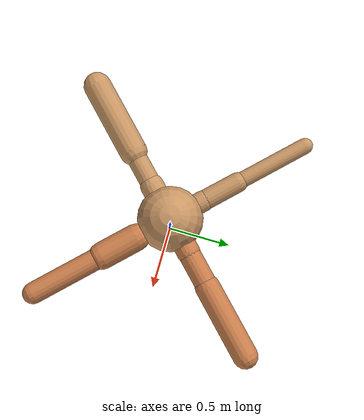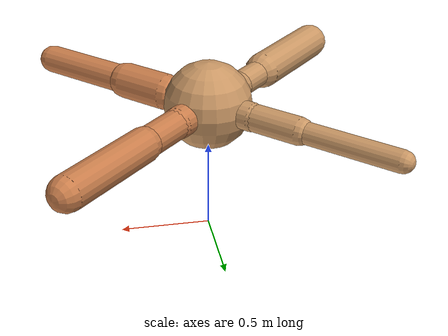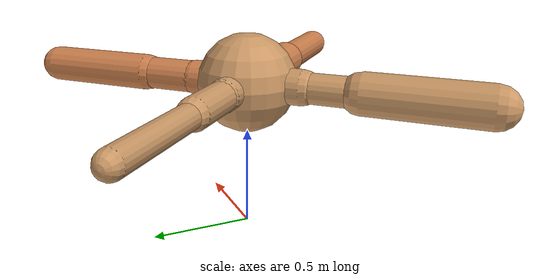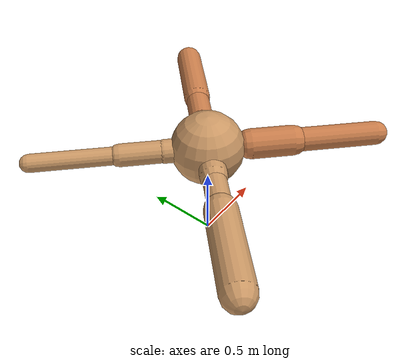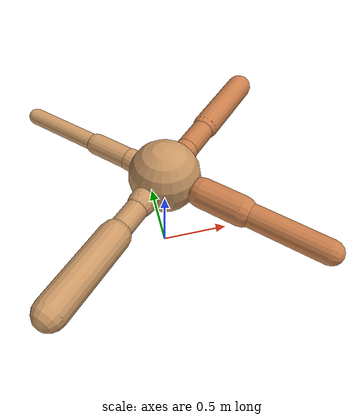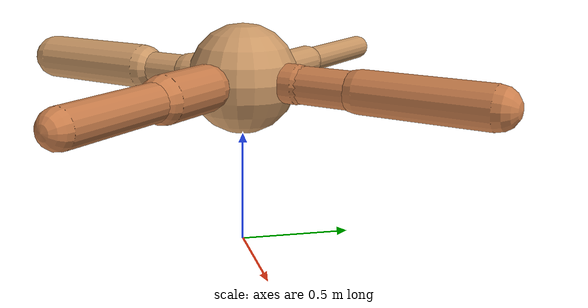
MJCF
<?xml version="1.0" encoding="utf-8"?>
<mujoco model="ant">
	<compiler angle="degree" coordinate="local" inertiafromgeom="true"></compiler>
	<option integrator="RK4" timestep="0.01"></option>
	<custom>
		<numeric data="0.0 0.0 0.55 1.0 0.0 0.0 0.0 0.0 1.0 0.0 -1.0 0.0 -1.0 0.0 1.0" name="init_qpos"></numeric>
	</custom>
	<default>
		<joint armature="1" damping="1.2846387290637478" limited="true"></joint>
		<geom conaffinity="0" condim="3" density="5.0" friction="1.288269145107672 0.11781548442618811 0.10881221900582552" margin="0.01" rgba="0.8 0.6 0.4 1"></geom>
	</default>
	<worldbody>
		<body name="torso" pos="0 0 0.75">
			<geom name="torso_geom" pos="0 0 0" size="0.24374800683237938" type="sphere"></geom>
			<body name="front_left_leg" pos="0 0 0">
				<geom fromto="0.0 0.0 0.0 0.2 0.2 0.0" name="aux_1_geom" size="0.08650572868027645" type="capsule" rgba=".8 .5 .3 1"></geom>
				<body name="aux_1" pos="0.2 0.2 0">
					<joint axis="0 0 1" name="hip_1" pos="0.0 0.0 0.0" range="-40 40" type="hinge"></joint>
					<geom fromto="0.0 0.0 0.0 0.2 0.2 0.0" name="left_leg_geom" size="0.08195880036282198" type="capsule" rgba=".8 .5 .3 1"></geom>
					<body pos="0.2 0.2 0" name="front_left_foot">
						<joint axis="-1 1 0" name="ankle_1" pos="0.0 0.0 0.0" range="30 100" type="hinge"></joint>
						<geom fromto="0.0 0.0 0.0 0.4 0.4 0.0" name="left_ankle_geom" size="0.09297528061254053" type="capsule" rgba=".8 .5 .3 1"></geom>
					</body>
				</body>
			</body>
			<body name="front_right_leg" pos="0 0 0">
				<geom fromto="0.0 0.0 0.0 -0.2 0.2 0.0" name="aux_2_geom" size="0.07885800794569685" type="capsule"></geom>
				<body name="aux_2" pos="-0.2 0.2 0">
					<joint axis="0 0 1" name="hip_2" pos="0.0 0.0 0.0" range="-40 40" type="hinge"></joint>
					<geom fromto="0.0 0.0 0.0 -0.2 0.2 0.0" name="right_leg_geom" size="0.07518982933440496" type="capsule"></geom>
					<body pos="-0.2 0.2 0" name="front_right_foot">
						<joint axis="1 1 0" name="ankle_2" pos="0.0 0.0 0.0" range="-100 -30" type="hinge"></joint>
						<geom fromto="0.0 0.0 0.0 -0.4 0.4 0.0" name="right_ankle_geom" size="0.059633717641284056" type="capsule"></geom>
					</body>
				</body>
			</body>
			<body name="left_back_leg" pos="0 0 0">
				<geom fromto="0.0 0.0 0.0 -0.2 -0.2 0.0" name="aux_3_geom" size="0.08855062649518045" type="capsule"></geom>
				<body name="aux_3" pos="-0.2 -0.2 0">
					<joint axis="0 0 1" name="hip_3" pos="0.0 0.0 0.0" range="-40 40" type="hinge"></joint>
					<geom fromto="0.0 0.0 0.0 -0.2 -0.2 0.0" name="back_leg_geom" size="0.07536507999618736" type="capsule"></geom>
					<body pos="-0.2 -0.2 0" name="left_back_foot">
						<joint axis="-1 1 0" name="ankle_3" pos="0.0 0.0 0.0" range="-100 -30" type="hinge"></joint>
						<geom fromto="0.0 0.0 0.0 -0.4 -0.4 0.0" name="third_ankle_geom" size="0.10341898209539015" type="capsule"></geom>
					</body>
				</body>
			</body>
			<body name="right_back_leg" pos="0 0 0">
				<geom fromto="0.0 0.0 0.0 0.2 -0.2 0.0" name="aux_4_geom" size="0.06412522286678224" type="capsule" rgba=".8 .5 .3 1"></geom>
				<body name="aux_4" pos="0.2 -0.2 0">
					<joint axis="0 0 1" name="hip_4" pos="0.0 0.0 0.0" range="-40 40" type="hinge"></joint>
					<geom fromto="0.0 0.0 0.0 0.2 -0.2 0.0" name="rightback_leg_geom" size="0.10124167029868118" type="capsule" rgba=".8 .5 .3 1"></geom>
					<body pos="0.2 -0.2 0" name="right_back_foot">
						<joint axis="1 1 0" name="ankle_4" pos="0.0 0.0 0.0" range="30 100" type="hinge"></joint>
						<geom fromto="0.0 0.0 0.0 0.4 -0.4 0.0" name="fourth_ankle_geom" size="0.07982167880232355" type="capsule" rgba=".8 .5 .3 1"></geom>
					</body>
				</body>
			</body>
		</body>
	</worldbody>
	<actuator>
		<motor ctrllimited="true" ctrlrange="-1.0 1.0" joint="hip_4" gear="150"></motor>
		<motor ctrllimited="true" ctrlrange="-1.0 1.0" joint="ankle_4" gear="150"></motor>
		<motor ctrllimited="true" ctrlrange="-1.0 1.0" joint="hip_1" gear="150"></motor>
		<motor ctrllimited="true" ctrlrange="-1.0 1.0" joint="ankle_1" gear="150"></motor>
		<motor ctrllimited="true" ctrlrange="-1.0 1.0" joint="hip_2" gear="150"></motor>
		<motor ctrllimited="true" ctrlrange="-1.0 1.0" joint="ankle_2" gear="150"></motor>
		<motor ctrllimited="true" ctrlrange="-1.0 1.0" joint="hip_3" gear="150"></motor>
		<motor ctrllimited="true" ctrlrange="-1.0 1.0" joint="ankle_3" gear="150"></motor>
	</actuator>
</mujoco>
